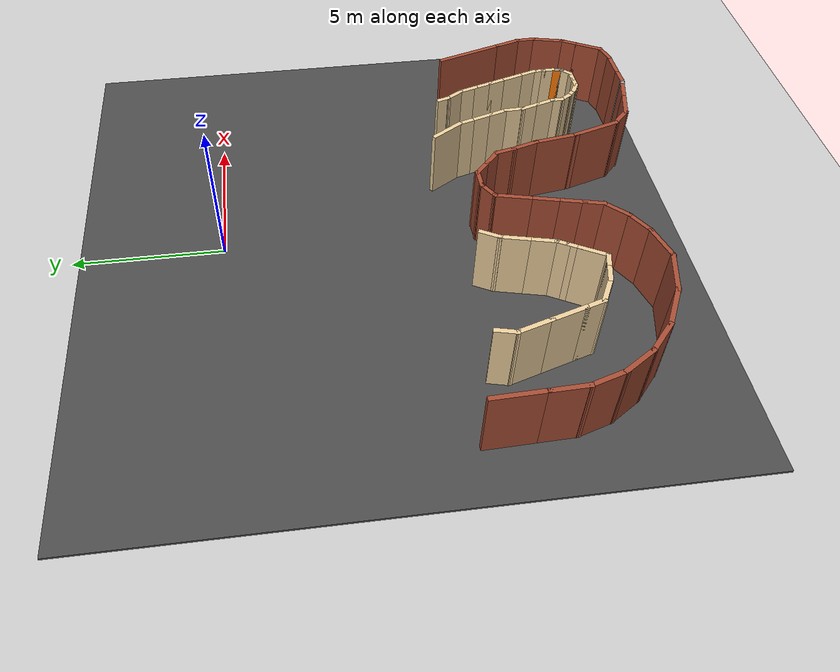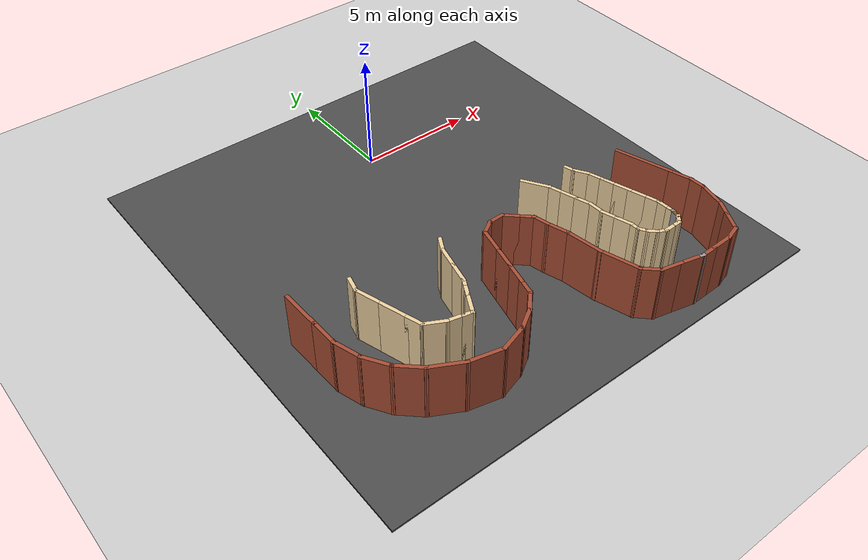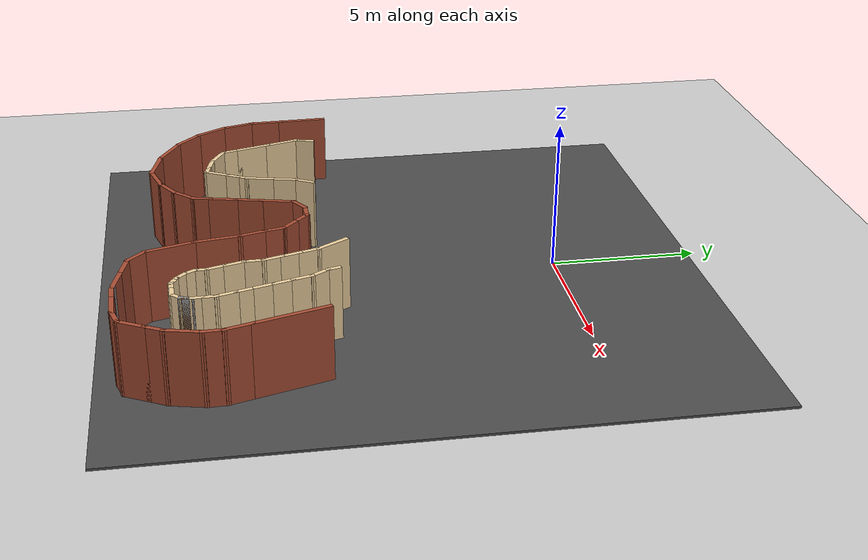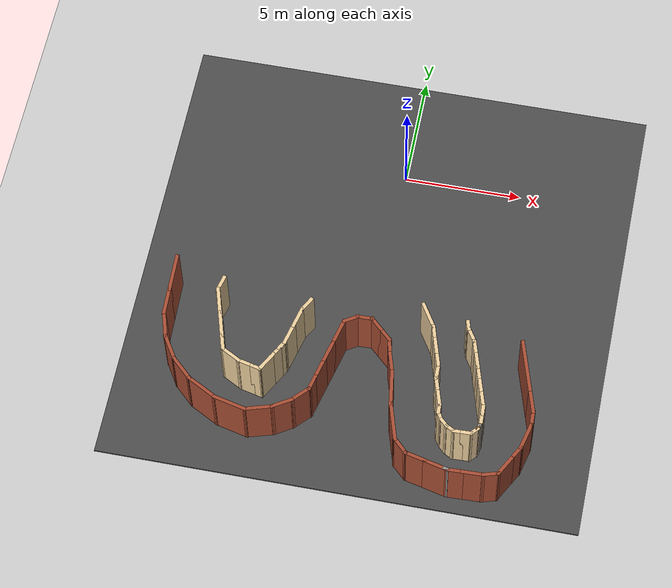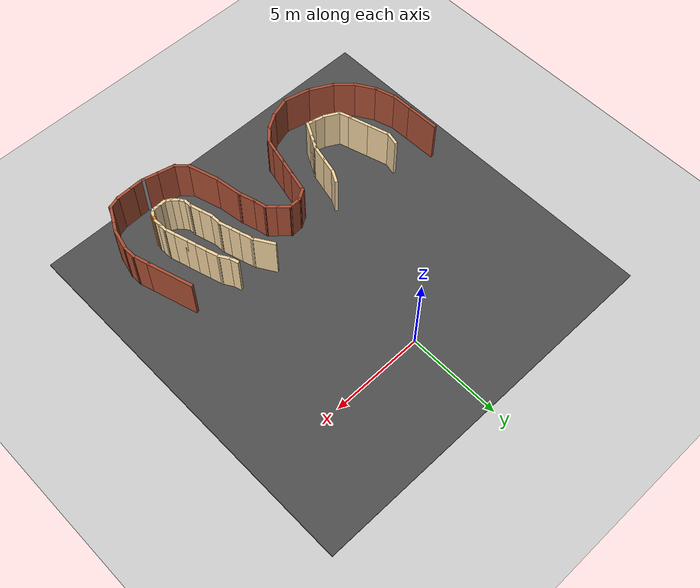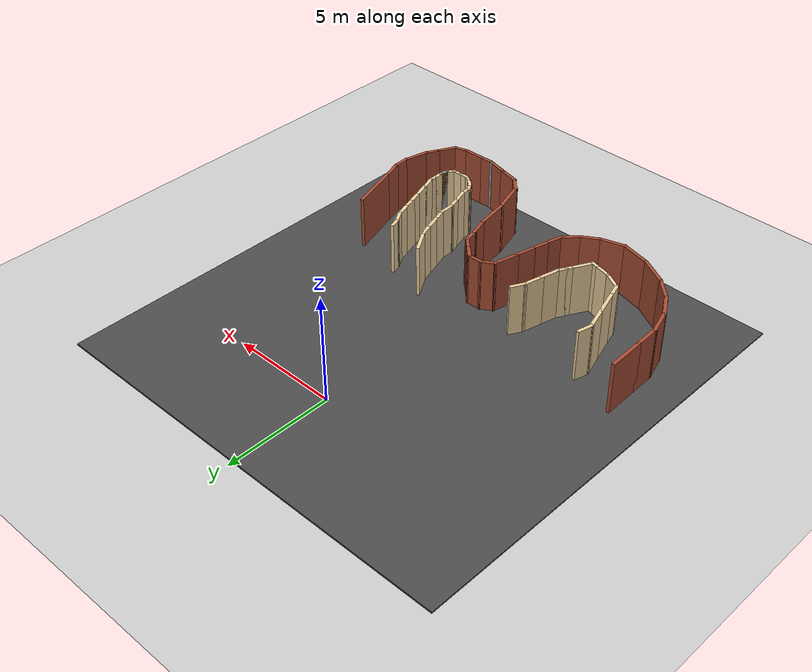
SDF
<sdf version="1.7">
 <world name="default">
  <model name="ground_plane">
   <static>1</static>
   <link name="link">
    <collision name="collision">
     <geometry><plane><normal>0 0 1</normal><size>100 100</size></plane></geometry>
     <surface><friction><ode><mu>100</mu><mu2>50</mu2></ode></friction></surface>
    </collision>
    <visual name="visual">
     <cast_shadows>0</cast_shadows>
     <geometry><plane><normal>0 0 1</normal><size>100 100</size></plane></geometry>
     <material>
      <script><uri>file://media/materials/scripts/gazebo.material</uri><name>Gazebo/Grey</name></script>
     </material>
    </visual>
   </link>
  </model>
  <model name="one">
   <pose>-0.558096 -6.76424 0 0 0 -1.54151</pose>
   <link name="Wall_379">
    <collision name="Wall_379_Collision">
     <geometry><box><size>2.5 0.15 2.5</size></box></geometry>
     <pose>0 0 1.25 0 -0 0</pose>
    </collision>
    <visual name="Wall_379_Visual">
     <pose>0 0 1.25 0 -0 0</pose>
     <geometry><box><size>2.5 0.15 2.5</size></box></geometry>
     <material>
      <script><uri>file://media/materials/scripts/gazebo.material</uri><name>Gazebo/Bricks</name></script>
      <ambient>1 1 1 1</ambient>
     </material>
     <meta><layer>0</layer></meta>
    </visual>
    <pose>2.87512 7.18331 0 0 -0 0.261799</pose>
   </link>
   <link name="Wall_380">
    <collision name="Wall_380_Collision">
     <geometry><box><size>1 0.15 2.5</size></box></geometry>
     <pose>0 0 1.25 0 -0 0</pose>
    </collision>
    <visual name="Wall_380_Visual">
     <pose>0 0 1.25 0 -0 0</pose>
     <geometry><box><size>1 0.15 2.5</size></box></geometry>
     <material>
      <script><uri>file://media/materials/scripts/gazebo.material</uri><name>Gazebo/Bricks</name></script>
      <ambient>1 1 1 1</ambient>
     </material>
     <meta><layer>0</layer></meta>
    </visual>
    <pose>4.42061 7.59742 0 0 -0 0.261799</pose>
   </link>
   <link name="Wall_381">
    <collision name="Wall_381_Collision">
     <geometry><box><size>0.75 0.15 2.5</size></box></geometry>
     <pose>0 0 1.25 0 -0 0</pose>
    </collision>
    <visual name="Wall_381_Visual">
     <pose>0 0 1.25 0 -0 0</pose>
     <geometry><box><size>0.75 0.15 2.5</size></box></geometry>
     <material>
      <script><uri>file://media/materials/scripts/gazebo.material</uri><name>Gazebo/Bricks</name></script>
      <ambient>1 1 1 1</ambient>
     </material>
     <meta><layer>0</layer></meta>
    </visual>
    <pose>5.13112 7.70742 0 0 -0 0</pose>
   </link>
   <link name="Wall_382">
    <collision name="Wall_382_Collision">
     <geometry><box><size>1.25 0.15 2.5</size></box></geometry>
     <pose>0 0 1.25 0 -0 0</pose>
    </collision>
    <visual name="Wall_382_Visual">
     <pose>0 0 1.25 0 -0 0</pose>
     <geometry><box><size>1.25 0.15 2.5</size></box></geometry>
     <material>
      <script><uri>file://media/materials/scripts/gazebo.material</uri><name>Gazebo/Bricks</name></script>
      <ambient>1 1 1 1</ambient>
     </material>
     <meta><layer>0</layer></meta>
    </visual>
    <pose>5.96238 7.56507 0 0 -0 -0.261799</pose>
   </link>
   <link name="Wall_383">
    <collision name="Wall_383_Collision">
     <geometry><box><size>0.75 0.15 2.5</size></box></geometry>
     <pose>0 0 1.25 0 -0 0</pose>
    </collision>
    <visual name="Wall_383_Visual">
     <pose>0 0 1.25 0 -0 0</pose>
     <geometry><box><size>0.75 0.15 2.5</size></box></geometry>
     <material>
      <script><uri>file://media/materials/scripts/gazebo.material</uri><name>Gazebo/Bricks</name></script>
      <ambient>1 1 1 1</ambient>
     </material>
     <meta><layer>0</layer></meta>
    </visual>
    <pose>6.75345 7.27272 0 0 -0 -0.523599</pose>
   </link>
   <link name="Wall_384">
    <collision name="Wall_384_Collision">
     <geometry><box><size>1 0.15 2.5</size></box></geometry>
     <pose>0 0 1.25 0 -0 0</pose>
    </collision>
    <visual name="Wall_384_Visual">
     <pose>0 0 1.25 0 -0 0</pose>
     <geometry><box><size>1 0.15 2.5</size></box></geometry>
     <material>
      <script><uri>file://media/materials/scripts/gazebo.material</uri><name>Gazebo/Bricks</name></script>
      <ambient>1 1 1 1</ambient>
     </material>
     <meta><layer>0</layer></meta>
    </visual>
    <pose>7.38132 6.91022 0 0 -0 -0.523599</pose>
   </link>
   <link name="Wall_385">
    <collision name="Wall_385_Collision">
     <geometry><box><size>0.75 0.15 2.5</size></box></geometry>
     <pose>0 0 1.25 0 -0 0</pose>
    </collision>
    <visual name="Wall_385_Visual">
     <pose>0 0 1.25 0 -0 0</pose>
     <geometry><box><size>0.75 0.15 2.5</size></box></geometry>
     <material>
      <script><uri>file://media/materials/scripts/gazebo.material</uri><name>Gazebo/Bricks</name></script>
      <ambient>1 1 1 1</ambient>
     </material>
     <meta><layer>0</layer></meta>
    </visual>
    <pose>7.82702 6.40794 0 0 -0 -1.309</pose>
   </link>
   <link name="Wall_386">
    <collision name="Wall_386_Collision">
     <geometry><box><size>1 0.15 2.5</size></box></geometry>
     <pose>0 0 1.25 0 -0 0</pose>
    </collision>
    <visual name="Wall_386_Visual">
     <pose>0 0 1.25 0 -0 0</pose>
     <geometry><box><size>1 0.15 2.5</size></box></geometry>
     <material>
      <script><uri>file://media/materials/scripts/gazebo.material</uri><name>Gazebo/Bricks</name></script>
      <ambient>1 1 1 1</ambient>
     </material>
     <meta><layer>0</layer></meta>
    </visual>
    <pose>7.90467 5.69316 0 0 -0 -1.5708</pose>
   </link>
   <link name="Wall_387">
    <collision name="Wall_387_Collision">
     <geometry><box><size>0.75 0.15 2.5</size></box></geometry>
     <pose>0 0 1.25 0 -0 0</pose>
    </collision>
    <visual name="Wall_387_Visual">
     <pose>0 0 1.25 0 -0 0</pose>
     <geometry><box><size>0.75 0.15 2.5</size></box></geometry>
     <material>
      <script><uri>file://media/materials/scripts/gazebo.material</uri><name>Gazebo/Bricks</name></script>
      <ambient>1 1 1 1</ambient>
     </material>
     <meta><layer>0</layer></meta>
    </visual>
    <pose>7.90467 4.96816 0 0 -0 -1.5708</pose>
   </link>
   <link name="Wall_388">
    <collision name="Wall_388_Collision">
     <geometry><box><size>0.25 0.15 2.5</size></box></geometry>
     <pose>0 0 1.25 0 -0 0</pose>
    </collision>
    <visual name="Wall_388_Visual">
     <pose>0 0 1.25 0 -0 0</pose>
     <geometry><box><size>0.25 0.15 2.5</size></box></geometry>
     <material>
      <script><uri>file://media/materials/scripts/gazebo.material</uri><name>Gazebo/Grey</name></script>
      <ambient>1 1 1 1</ambient>
     </material>
     <meta><layer>0</layer></meta>
    </visual>
    <pose>7.89173 4.61987 0 0 -0 -1.8326</pose>
   </link>
   <link name="Wall_389">
    <collision name="Wall_389_Collision">
     <geometry><box><size>1 0.15 2.5</size></box></geometry>
     <pose>0 0 1.25 0 -0 0</pose>
    </collision>
    <visual name="Wall_389_Visual">
     <pose>0 0 1.25 0 -0 0</pose>
     <geometry><box><size>1 0.15 2.5</size></box></geometry>
     <material>
      <script><uri>file://media/materials/scripts/gazebo.material</uri><name>Gazebo/Bricks</name></script>
      <ambient>1 1 1 1</ambient>
     </material>
     <meta><layer>0</layer></meta>
    </visual>
    <pose>7.76879 4.16105 0 0 -0 -1.8326</pose>
   </link>
   <link name="Wall_390">
    <collision name="Wall_390_Collision">
     <geometry><box><size>1 0.15 2.5</size></box></geometry>
     <pose>0 0 1.25 0 -0 0</pose>
    </collision>
    <visual name="Wall_390_Visual">
     <pose>0 0 1.25 0 -0 0</pose>
     <geometry><box><size>1 0.15 2.5</size></box></geometry>
     <material>
      <script><uri>file://media/materials/scripts/gazebo.material</uri><name>Gazebo/Bricks</name></script>
      <ambient>1 1 1 1</ambient>
     </material>
     <meta><layer>0</layer></meta>
    </visual>
    <pose>7.54879 3.34002 0 0 -0 -1.8326</pose>
   </link>
   <link name="Wall_391">
    <collision name="Wall_391_Collision">
     <geometry><box><size>0.889556 0.15 2.5</size></box></geometry>
     <pose>0 0 1.25 0 -0 0</pose>
    </collision>
    <visual name="Wall_391_Visual">
     <pose>0 0 1.25 0 -0 0</pose>
     <geometry><box><size>0.889556 0.15 2.5</size></box></geometry>
     <material>
      <script><uri>file://media/materials/scripts/gazebo.material</uri><name>Gazebo/Bricks</name></script>
      <ambient>1 1 1 1</ambient>
     </material>
     <meta><layer>0</layer></meta>
    </visual>
    <pose>7.17195 2.67351 0 0 -0 -2.37696</pose>
   </link>
   <link name="Wall_392">
    <collision name="Wall_392_Collision">
     <geometry><box><size>1.75 0.15 2.5</size></box></geometry>
     <pose>0 0 1.25 0 -0 0</pose>
    </collision>
    <visual name="Wall_392_Visual">
     <pose>0 0 1.25 0 -0 0</pose>
     <geometry><box><size>1.75 0.15 2.5</size></box></geometry>
     <material>
      <script><uri>file://media/materials/scripts/gazebo.material</uri><name>Gazebo/Bricks</name></script>
      <ambient>1 1 1 1</ambient>
     </material>
     <meta><layer>0</layer></meta>
    </visual>
    <pose>6.13237 2.21047 0 0 -0 -2.87979</pose>
   </link>
   <link name="Wall_393">
    <collision name="Wall_393_Collision">
     <geometry><box><size>1.62119 0.15 2.5</size></box></geometry>
     <pose>0 0 1.25 0 -0 0</pose>
    </collision>
    <visual name="Wall_393_Visual">
     <pose>0 0 1.25 0 -0 0</pose>
     <geometry><box><size>1.62119 0.15 2.5</size></box></geometry>
     <material>
      <script><uri>file://media/materials/scripts/gazebo.material</uri><name>Gazebo/Bricks</name></script>
      <ambient>1 1 1 1</ambient>
     </material>
     <meta><layer>0</layer></meta>
    </visual>
    <pose>4.66397 1.91645 0 0 -0 -3.0231</pose>
   </link>
   <link name="Wall_394">
    <collision name="Wall_394_Collision">
     <geometry><box><size>1 0.15 2.5</size></box></geometry>
     <pose>0 0 1.25 0 -0 0</pose>
    </collision>
    <visual name="Wall_394_Visual">
     <pose>0 0 1.25 0 -0 0</pose>
     <geometry><box><size>1 0.15 2.5</size></box></geometry>
     <material>
      <script><uri>file://media/materials/scripts/gazebo.material</uri><name>Gazebo/Bricks</name></script>
      <ambient>1 1 1 1</ambient>
     </material>
     <meta><layer>0</layer></meta>
    </visual>
    <pose>3.52302 1.7195 0 0 -0 -2.87979</pose>
   </link>
   <link name="Wall_414">
    <collision name="Wall_414_Collision">
     <geometry><box><size>1.75 0.15 2.5</size></box></geometry>
     <pose>0 0 1.25 0 -0 0</pose>
    </collision>
    <visual name="Wall_414_Visual">
     <pose>0 0 1.25 0 -0 0</pose>
     <geometry><box><size>1.75 0.15 2.5</size></box></geometry>
     <material>
      <script><uri>file://media/materials/scripts/gazebo.material</uri><name>Gazebo/Bricks</name></script>
      <ambient>1 1 1 1</ambient>
     </material>
     <meta><layer>0</layer></meta>
    </visual>
    <pose>0.829668 -7.84054 0 0 -0 0</pose>
   </link>
   <link name="Wall_415">
    <collision name="Wall_415_Collision">
     <geometry><box><size>1.25 0.15 2.5</size></box></geometry>
     <pose>0 0 1.25 0 -0 0</pose>
    </collision>
    <visual name="Wall_415_Visual">
     <pose>0 0 1.25 0 -0 0</pose>
     <geometry><box><size>1.25 0.15 2.5</size></box></geometry>
     <material>
      <script><uri>file://media/materials/scripts/gazebo.material</uri><name>Gazebo/Bricks</name></script>
      <ambient>1 1 1 1</ambient>
     </material>
     <meta><layer>0</layer></meta>
    </visual>
    <pose>2.17967 -7.84054 0 0 -0 0</pose>
   </link>
   <link name="Wall_416">
    <collision name="Wall_416_Collision">
     <geometry><box><size>1.25 0.15 2.5</size></box></geometry>
     <pose>0 0 1.25 0 -0 0</pose>
    </collision>
    <visual name="Wall_416_Visual">
     <pose>0 0 1.25 0 -0 0</pose>
     <geometry><box><size>1.25 0.15 2.5</size></box></geometry>
     <material>
      <script><uri>file://media/materials/scripts/gazebo.material</uri><name>Gazebo/Bricks</name></script>
      <ambient>1 1 1 1</ambient>
     </material>
     <meta><layer>0</layer></meta>
    </visual>
    <pose>3.26093 -7.69818 0 0 -0 0.261799</pose>
   </link>
   <link name="Wall_417">
    <collision name="Wall_417_Collision">
     <geometry><box><size>1.25 0.15 2.5</size></box></geometry>
     <pose>0 0 1.25 0 -0 0</pose>
    </collision>
    <visual name="Wall_417_Visual">
     <pose>0 0 1.25 0 -0 0</pose>
     <geometry><box><size>1.25 0.15 2.5</size></box></geometry>
     <material>
      <script><uri>file://media/materials/scripts/gazebo.material</uri><name>Gazebo/Bricks</name></script>
      <ambient>1 1 1 1</ambient>
     </material>
     <meta><layer>0</layer></meta>
    </visual>
    <pose>4.2685 -7.28083 0 0 -0 0.523599</pose>
   </link>
   <link name="Wall_418">
    <collision name="Wall_418_Collision">
     <geometry><box><size>1.25 0.15 2.5</size></box></geometry>
     <pose>0 0 1.25 0 -0 0</pose>
    </collision>
    <visual name="Wall_418_Visual">
     <pose>0 0 1.25 0 -0 0</pose>
     <geometry><box><size>1.25 0.15 2.5</size></box></geometry>
     <material>
      <script><uri>file://media/materials/scripts/gazebo.material</uri><name>Gazebo/Bricks</name></script>
      <ambient>1 1 1 1</ambient>
     </material>
     <meta><layer>0</layer></meta>
    </visual>
    <pose>5.13372 -6.61693 0 0 -0 0.785398</pose>
   </link>
   <link name="Wall_419">
    <collision name="Wall_419_Collision">
     <geometry><box><size>1.5 0.15 2.5</size></box></geometry>
     <pose>0 0 1.25 0 -0 0</pose>
    </collision>
    <visual name="Wall_419_Visual">
     <pose>0 0 1.25 0 -0 0</pose>
     <geometry><box><size>1.5 0.15 2.5</size></box></geometry>
     <material>
      <script><uri>file://media/materials/scripts/gazebo.material</uri><name>Gazebo/Bricks</name></script>
      <ambient>1 1 1 1</ambient>
     </material>
     <meta><layer>0</layer></meta>
    </visual>
    <pose>5.86013 -5.64345 0 0 -0 1.0472</pose>
   </link>
   <link name="Wall_420">
    <collision name="Wall_420_Collision">
     <geometry><box><size>1.5 0.15 2.5</size></box></geometry>
     <pose>0 0 1.25 0 -0 0</pose>
    </collision>
    <visual name="Wall_420_Visual">
     <pose>0 0 1.25 0 -0 0</pose>
     <geometry><box><size>1.5 0.15 2.5</size></box></geometry>
     <material>
      <script><uri>file://media/materials/scripts/gazebo.material</uri><name>Gazebo/Bricks</name></script>
      <ambient>1 1 1 1</ambient>
     </material>
     <meta><layer>0</layer></meta>
    </visual>
    <pose>6.37233 -4.40688 0 0 -0 1.309</pose>
   </link>
   <link name="Wall_421">
    <collision name="Wall_421_Collision">
     <geometry><box><size>1.25 0.15 2.5</size></box></geometry>
     <pose>0 0 1.25 0 -0 0</pose>
    </collision>
    <visual name="Wall_421_Visual">
     <pose>0 0 1.25 0 -0 0</pose>
     <geometry><box><size>1.25 0.15 2.5</size></box></geometry>
     <material>
      <script><uri>file://media/materials/scripts/gazebo.material</uri><name>Gazebo/Bricks</name></script>
      <ambient>1 1 1 1</ambient>
     </material>
     <meta><layer>0</layer></meta>
    </visual>
    <pose>6.40469 -3.22362 0 0 -0 1.8326</pose>
   </link>
   <link name="Wall_422">
    <collision name="Wall_422_Collision">
     <geometry><box><size>1 0.15 2.5</size></box></geometry>
     <pose>0 0 1.25 0 -0 0</pose>
    </collision>
    <visual name="Wall_422_Visual">
     <pose>0 0 1.25 0 -0 0</pose>
     <geometry><box><size>1 0.15 2.5</size></box></geometry>
     <material>
      <script><uri>file://media/materials/scripts/gazebo.material</uri><name>Gazebo/Bricks</name></script>
      <ambient>1 1 1 1</ambient>
     </material>
     <meta><layer>0</layer></meta>
    </visual>
    <pose>6.04984 -2.3243 0 0 -0 2.0944</pose>
   </link>
   <link name="Wall_423">
    <collision name="Wall_423_Collision">
     <geometry><box><size>1 0.15 2.5</size></box></geometry>
     <pose>0 0 1.25 0 -0 0</pose>
    </collision>
    <visual name="Wall_423_Visual">
     <pose>0 0 1.25 0 -0 0</pose>
     <geometry><box><size>1 0.15 2.5</size></box></geometry>
     <material>
      <script><uri>file://media/materials/scripts/gazebo.material</uri><name>Gazebo/Bricks</name></script>
      <ambient>1 1 1 1</ambient>
     </material>
     <meta><layer>0</layer></meta>
    </visual>
    <pose>5.53682 -1.65572 0 0 -0 2.35619</pose>
   </link>
   <link name="Wall_424">
    <collision name="Wall_424_Collision">
     <geometry><box><size>0.75 0.15 2.5</size></box></geometry>
     <pose>0 0 1.25 0 -0 0</pose>
    </collision>
    <visual name="Wall_424_Visual">
     <pose>0 0 1.25 0 -0 0</pose>
     <geometry><box><size>0.75 0.15 2.5</size></box></geometry>
     <material>
      <script><uri>file://media/materials/scripts/gazebo.material</uri><name>Gazebo/Bricks</name></script>
      <ambient>1 1 1 1</ambient>
     </material>
     <meta><layer>0</layer></meta>
    </visual>
    <pose>4.94652 -1.27756 0 0 -0 2.87979</pose>
   </link>
   <link name="Wall_425">
    <collision name="Wall_425_Collision">
     <geometry><box><size>1 0.15 2.5</size></box></geometry>
     <pose>0 0 1.25 0 -0 0</pose>
    </collision>
    <visual name="Wall_425_Visual">
     <pose>0 0 1.25 0 -0 0</pose>
     <geometry><box><size>1 0.15 2.5</size></box></geometry>
     <material>
      <script><uri>file://media/materials/scripts/gazebo.material</uri><name>Gazebo/Bricks</name></script>
      <ambient>1 1 1 1</ambient>
     </material>
     <meta><layer>0</layer></meta>
    </visual>
    <pose>4.24622 -1.08991 0 0 -0 2.87979</pose>
   </link>
   <link name="Wall_426">
    <collision name="Wall_426_Collision">
     <geometry><box><size>1 0.15 2.5</size></box></geometry>
     <pose>0 0 1.25 0 -0 0</pose>
    </collision>
    <visual name="Wall_426_Visual">
     <pose>0 0 1.25 0 -0 0</pose>
     <geometry><box><size>1 0.15 2.5</size></box></geometry>
     <material>
      <script><uri>file://media/materials/scripts/gazebo.material</uri><name>Gazebo/Bricks</name></script>
      <ambient>1 1 1 1</ambient>
     </material>
     <meta><layer>0</layer></meta>
    </visual>
    <pose>3.42518 -0.869916 0 0 -0 2.87979</pose>
   </link>
   <link name="Wall_427">
    <collision name="Wall_427_Collision">
     <geometry><box><size>1.25 0.15 2.5</size></box></geometry>
     <pose>0 0 1.25 0 -0 0</pose>
    </collision>
    <visual name="Wall_427_Visual">
     <pose>0 0 1.25 0 -0 0</pose>
     <geometry><box><size>1.25 0.15 2.5</size></box></geometry>
     <material>
      <script><uri>file://media/materials/scripts/gazebo.material</uri><name>Gazebo/Bricks</name></script>
      <ambient>1 1 1 1</ambient>
     </material>
     <meta><layer>0</layer></meta>
    </visual>
    <pose>2.48341 -0.617567 0 0 -0 2.87979</pose>
   </link>
   <link name="Wall_428">
    <collision name="Wall_428_Collision">
     <geometry><box><size>0.75 0.15 2.5</size></box></geometry>
     <pose>0 0 1.25 0 -0 0</pose>
    </collision>
    <visual name="Wall_428_Visual">
     <pose>0 0 1.25 0 -0 0</pose>
     <geometry><box><size>0.75 0.15 2.5</size></box></geometry>
     <material>
      <script><uri>file://media/materials/scripts/gazebo.material</uri><name>Gazebo/Bricks</name></script>
      <ambient>1 1 1 1</ambient>
     </material>
     <meta><layer>0</layer></meta>
    </visual>
    <pose>1.80215 -0.215409 0 0 -0 2.0944</pose>
   </link>
   <link name="Wall_429">
    <collision name="Wall_429_Collision">
     <geometry><box><size>0.75 0.15 2.5</size></box></geometry>
     <pose>0 0 1.25 0 -0 0</pose>
    </collision>
    <visual name="Wall_429_Visual">
     <pose>0 0 1.25 0 -0 0</pose>
     <geometry><box><size>0.75 0.15 2.5</size></box></geometry>
     <material>
      <script><uri>file://media/materials/scripts/gazebo.material</uri><name>Gazebo/Bricks</name></script>
      <ambient>1 1 1 1</ambient>
     </material>
     <meta><layer>0</layer></meta>
    </visual>
    <pose>1.65215 0.344399 0 0 -0 1.5708</pose>
   </link>
   <link name="Wall_430">
    <collision name="Wall_430_Collision">
     <geometry><box><size>0.75 0.15 2.5</size></box></geometry>
     <pose>0 0 1.25 0 -0 0</pose>
    </collision>
    <visual name="Wall_430_Visual">
     <pose>0 0 1.25 0 -0 0</pose>
     <geometry><box><size>0.75 0.15 2.5</size></box></geometry>
     <material>
      <script><uri>file://media/materials/scripts/gazebo.material</uri><name>Gazebo/Bricks</name></script>
      <ambient>1 1 1 1</ambient>
     </material>
     <meta><layer>0</layer></meta>
    </visual>
    <pose>1.86428 0.856531 0 0 -0 0.785398</pose>
   </link>
   <link name="Wall_431">
    <collision name="Wall_431_Collision">
     <geometry><box><size>0.75 0.15 2.5</size></box></geometry>
     <pose>0 0 1.25 0 -0 0</pose>
    </collision>
    <visual name="Wall_431_Visual">
     <pose>0 0 1.25 0 -0 0</pose>
     <geometry><box><size>0.75 0.15 2.5</size></box></geometry>
     <material>
      <script><uri>file://media/materials/scripts/gazebo.material</uri><name>Gazebo/Bricks</name></script>
      <ambient>1 1 1 1</ambient>
     </material>
     <meta><layer>0</layer></meta>
    </visual>
    <pose>2.28854 1.28079 0 0 -0 0.785398</pose>
   </link>
   <link name="Wall_432">
    <collision name="Wall_432_Collision">
     <geometry><box><size>0.772834 0.15 2.5</size></box></geometry>
     <pose>0 0 1.25 0 -0 0</pose>
    </collision>
    <visual name="Wall_432_Visual">
     <pose>0 0 1.25 0 -0 0</pose>
     <geometry><box><size>0.772834 0.15 2.5</size></box></geometry>
     <material>
      <script><uri>file://media/materials/scripts/gazebo.material</uri><name>Gazebo/Bricks</name></script>
      <ambient>1 1 1 1</ambient>
     </material>
     <meta><layer>0</layer></meta>
    </visual>
    <pose>2.80659 1.55121 0 0 -0 0.188278</pose>
   </link>
   <link name="Wall_460">
    <collision name="Wall_460_Collision">
     <geometry><box><size>0.5 0.15 2.5</size></box></geometry>
     <pose>0 0 1.25 0 -0 0</pose>
    </collision>
    <visual name="Wall_460_Visual">
     <pose>0 0 1.25 0 -0 0</pose>
     <geometry><box><size>0.5 0.15 2.5</size></box></geometry>
     <material>
      <script><uri>file://media/materials/scripts/gazebo.material</uri><name>Gazebo/Grey</name></script>
      <ambient>0.921569 0.807843 0.615686 1</ambient>
     </material>
     <meta><layer>0</layer></meta>
    </visual>
    <pose>1.32761 4.5781 0 0 -0 0.261799</pose>
   </link>
   <link name="Wall_461">
    <collision name="Wall_461_Collision">
     <geometry><box><size>0.75 0.15 2.5</size></box></geometry>
     <pose>0 0 1.25 0 -0 0</pose>
    </collision>
    <visual name="Wall_461_Visual">
     <pose>0 0 1.25 0 -0 0</pose>
     <geometry><box><size>0.75 0.15 2.5</size></box></geometry>
     <material>
      <script><uri>file://media/materials/scripts/gazebo.material</uri><name>Gazebo/Grey</name></script>
      <ambient>0.921569 0.807843 0.615686 1</ambient>
     </material>
     <meta><layer>0</layer></meta>
    </visual>
    <pose>1.75646 4.77339 0 0 -0 0.523599</pose>
   </link>
   <link name="Wall_462">
    <collision name="Wall_462_Collision">
     <geometry><box><size>0.75 0.15 2.5</size></box></geometry>
     <pose>0 0 1.25 0 -0 0</pose>
    </collision>
    <visual name="Wall_462_Visual">
     <pose>0 0 1.25 0 -0 0</pose>
     <geometry><box><size>0.75 0.15 2.5</size></box></geometry>
     <material>
      <script><uri>file://media/materials/scripts/gazebo.material</uri><name>Gazebo/Grey</name></script>
      <ambient>0.921569 0.807843 0.615686 1</ambient>
     </material>
     <meta><layer>0</layer></meta>
    </visual>
    <pose>2.30604 5.00104 0 0 -0 0.261799</pose>
   </link>
   <link name="Wall_463">
    <collision name="Wall_463_Collision">
     <geometry><box><size>0.75 0.15 2.5</size></box></geometry>
     <pose>0 0 1.25 0 -0 0</pose>
    </collision>
    <visual name="Wall_463_Visual">
     <pose>0 0 1.25 0 -0 0</pose>
     <geometry><box><size>0.75 0.15 2.5</size></box></geometry>
     <material>
      <script><uri>file://media/materials/scripts/gazebo.material</uri><name>Gazebo/Grey</name></script>
      <ambient>0.921569 0.807843 0.615686 1</ambient>
     </material>
     <meta><layer>0</layer></meta>
    </visual>
    <pose>2.8856 5.15633 0 0 -0 0.261799</pose>
   </link>
   <link name="Wall_464">
    <collision name="Wall_464_Collision">
     <geometry><box><size>0.75 0.15 2.5</size></box></geometry>
     <pose>0 0 1.25 0 -0 0</pose>
    </collision>
    <visual name="Wall_464_Visual">
     <pose>0 0 1.25 0 -0 0</pose>
     <geometry><box><size>0.75 0.15 2.5</size></box></geometry>
     <material>
      <script><uri>file://media/materials/scripts/gazebo.material</uri><name>Gazebo/Grey</name></script>
      <ambient>0.921569 0.807843 0.615686 1</ambient>
     </material>
     <meta><layer>0</layer></meta>
    </visual>
    <pose>3.46515 5.31162 0 0 -0 0.261799</pose>
   </link>
   <link name="Wall_465">
    <collision name="Wall_465_Collision">
     <geometry><box><size>0.75 0.15 2.5</size></box></geometry>
     <pose>0 0 1.25 0 -0 0</pose>
    </collision>
    <visual name="Wall_465_Visual">
     <pose>0 0 1.25 0 -0 0</pose>
     <geometry><box><size>0.75 0.15 2.5</size></box></geometry>
     <material>
      <script><uri>file://media/materials/scripts/gazebo.material</uri><name>Gazebo/Grey</name></script>
      <ambient>0.921569 0.807843 0.615686 1</ambient>
     </material>
     <meta><layer>0</layer></meta>
    </visual>
    <pose>4.04471 5.46691 0 0 -0 0.261799</pose>
   </link>
   <link name="Wall_466">
    <collision name="Wall_466_Collision">
     <geometry><box><size>0.75 0.15 2.5</size></box></geometry>
     <pose>0 0 1.25 0 -0 0</pose>
    </collision>
    <visual name="Wall_466_Visual">
     <pose>0 0 1.25 0 -0 0</pose>
     <geometry><box><size>0.75 0.15 2.5</size></box></geometry>
     <material>
      <script><uri>file://media/materials/scripts/gazebo.material</uri><name>Gazebo/Grey</name></script>
      <ambient>0.921569 0.807843 0.615686 1</ambient>
     </material>
     <meta><layer>0</layer></meta>
    </visual>
    <pose>4.62426 5.6222 0 0 -0 0.261799</pose>
   </link>
   <link name="Wall_467">
    <collision name="Wall_467_Collision">
     <geometry><box><size>0.5 0.15 2.5</size></box></geometry>
     <pose>0 0 1.25 0 -0 0</pose>
    </collision>
    <visual name="Wall_467_Visual">
     <pose>0 0 1.25 0 -0 0</pose>
     <geometry><box><size>0.5 0.15 2.5</size></box></geometry>
     <material>
      <script><uri>file://media/materials/scripts/gazebo.material</uri><name>Gazebo/Grey</name></script>
      <ambient>0.921569 0.807843 0.615686 1</ambient>
     </material>
     <meta><layer>0</layer></meta>
    </visual>
    <pose>5.08904 5.69985 0 0 -0 0</pose>
   </link>
   <link name="Wall_468">
    <collision name="Wall_468_Collision">
     <geometry><box><size>0.5 0.15 2.5</size></box></geometry>
     <pose>0 0 1.25 0 -0 0</pose>
    </collision>
    <visual name="Wall_468_Visual">
     <pose>0 0 1.25 0 -0 0</pose>
     <geometry><box><size>0.5 0.15 2.5</size></box></geometry>
     <material>
      <script><uri>file://media/materials/scripts/gazebo.material</uri><name>Gazebo/Grey</name></script>
      <ambient>0.921569 0.807843 0.615686 1</ambient>
     </material>
     <meta><layer>0</layer></meta>
    </visual>
    <pose>5.43904 5.69985 0 0 -0 0</pose>
   </link>
   <link name="Wall_471">
    <collision name="Wall_471_Collision">
     <geometry><box><size>0.478571 0.15 2.5</size></box></geometry>
     <pose>0 0 1.25 0 -0 0</pose>
    </collision>
    <visual name="Wall_471_Visual">
     <pose>0 0 1.25 0 -0 0</pose>
     <geometry><box><size>0.478571 0.15 2.5</size></box></geometry>
     <material>
      <script><uri>file://media/materials/scripts/gazebo.material</uri><name>Gazebo/Grey</name></script>
      <ambient>1 1 1 1</ambient>
     </material>
     <meta><layer>0</layer></meta>
    </visual>
    <pose>5.77362 5.66079 0 0 -0 2.90155</pose>
   </link>
   <link name="Wall_472">
    <collision name="Wall_472_Collision">
     <geometry><box><size>0.478571 0.15 2.5</size></box></geometry>
     <pose>0 0 1.25 0 -0 0</pose>
    </collision>
    <visual name="Wall_472_Visual">
     <pose>0 0 1.25 0 -0 0</pose>
     <geometry><box><size>0.478571 0.15 2.5</size></box></geometry>
     <material>
      <script><uri>file://media/materials/scripts/gazebo.material</uri><name>Gazebo/Grey</name></script>
      <ambient>0.996078 0.47451 0.0196078 1</ambient>
     </material>
     <meta><layer>0</layer></meta>
    </visual>
    <pose>5.77362 5.66079 0 0 -0 -0.24004</pose>
   </link>
   <link name="Wall_473">
    <collision name="Wall_473_Collision">
     <geometry><box><size>0.5 0.15 2.5</size></box></geometry>
     <pose>0 0 1.25 0 -0 0</pose>
    </collision>
    <visual name="Wall_473_Visual">
     <pose>0 0 1.25 0 -0 0</pose>
     <geometry><box><size>0.5 0.15 2.5</size></box></geometry>
     <material>
      <script><uri>file://media/materials/scripts/gazebo.material</uri><name>Gazebo/Grey</name></script>
      <ambient>0.921569 0.807843 0.615686 1</ambient>
     </material>
     <meta><layer>0</layer></meta>
    </visual>
    <pose>6.05694 5.49799 0 0 -0 -0.785398</pose>
   </link>
   <link name="Wall_474">
    <collision name="Wall_474_Collision">
     <geometry><box><size>0.5 0.15 2.5</size></box></geometry>
     <pose>0 0 1.25 0 -0 0</pose>
    </collision>
    <visual name="Wall_474_Visual">
     <pose>0 0 1.25 0 -0 0</pose>
     <geometry><box><size>0.5 0.15 2.5</size></box></geometry>
     <material>
      <script><uri>file://media/materials/scripts/gazebo.material</uri><name>Gazebo/Grey</name></script>
      <ambient>0.921569 0.807843 0.615686 1</ambient>
     </material>
     <meta><layer>0</layer></meta>
    </visual>
    <pose>6.18068 5.19925 0 0 -0 -1.5708</pose>
   </link>
   <link name="Wall_475">
    <collision name="Wall_475_Collision">
     <geometry><box><size>0.5 0.15 2.5</size></box></geometry>
     <pose>0 0 1.25 0 -0 0</pose>
    </collision>
    <visual name="Wall_475_Visual">
     <pose>0 0 1.25 0 -0 0</pose>
     <geometry><box><size>0.5 0.15 2.5</size></box></geometry>
     <material>
      <script><uri>file://media/materials/scripts/gazebo.material</uri><name>Gazebo/Grey</name></script>
      <ambient>0.921569 0.807843 0.615686 1</ambient>
     </material>
     <meta><layer>0</layer></meta>
    </visual>
    <pose>6.18068 4.84925 0 0 -0 -1.5708</pose>
   </link>
   <link name="Wall_476">
    <collision name="Wall_476_Collision">
     <geometry><box><size>0.5 0.15 2.5</size></box></geometry>
     <pose>0 0 1.25 0 -0 0</pose>
    </collision>
    <visual name="Wall_476_Visual">
     <pose>0 0 1.25 0 -0 0</pose>
     <geometry><box><size>0.5 0.15 2.5</size></box></geometry>
     <material>
      <script><uri>file://media/materials/scripts/gazebo.material</uri><name>Gazebo/Grey</name></script>
      <ambient>0.921569 0.807843 0.615686 1</ambient>
     </material>
     <meta><layer>0</layer></meta>
    </visual>
    <pose>6.09318 4.52269 0 0 -0 -2.0944</pose>
   </link>
   <link name="Wall_477">
    <collision name="Wall_477_Collision">
     <geometry><box><size>0.5 0.15 2.5</size></box></geometry>
     <pose>0 0 1.25 0 -0 0</pose>
    </collision>
    <visual name="Wall_477_Visual">
     <pose>0 0 1.25 0 -0 0</pose>
     <geometry><box><size>0.5 0.15 2.5</size></box></geometry>
     <material>
      <script><uri>file://media/materials/scripts/gazebo.material</uri><name>Gazebo/Grey</name></script>
      <ambient>0.921569 0.807843 0.615686 1</ambient>
     </material>
     <meta><layer>0</layer></meta>
    </visual>
    <pose>5.88194 4.24739 0 0 -0 -2.35619</pose>
   </link>
   <link name="Wall_478">
    <collision name="Wall_478_Collision">
     <geometry><box><size>0.5 0.15 2.5</size></box></geometry>
     <pose>0 0 1.25 0 -0 0</pose>
    </collision>
    <visual name="Wall_478_Visual">
     <pose>0 0 1.25 0 -0 0</pose>
     <geometry><box><size>0.5 0.15 2.5</size></box></geometry>
     <material>
      <script><uri>file://media/materials/scripts/gazebo.material</uri><name>Gazebo/Grey</name></script>
      <ambient>0.921569 0.807843 0.615686 1</ambient>
     </material>
     <meta><layer>0</layer></meta>
    </visual>
    <pose>5.60664 4.03615 0 0 -0 -2.61799</pose>
   </link>
   <link name="Wall_479">
    <collision name="Wall_479_Collision">
     <geometry><box><size>0.5 0.15 2.5</size></box></geometry>
     <pose>0 0 1.25 0 -0 0</pose>
    </collision>
    <visual name="Wall_479_Visual">
     <pose>0 0 1.25 0 -0 0</pose>
     <geometry><box><size>0.5 0.15 2.5</size></box></geometry>
     <material>
      <script><uri>file://media/materials/scripts/gazebo.material</uri><name>Gazebo/Grey</name></script>
      <ambient>0.921569 0.807843 0.615686 1</ambient>
     </material>
     <meta><layer>0</layer></meta>
    </visual>
    <pose>5.28008 3.94865 0 0 -0 3.14159</pose>
   </link>
   <link name="Wall_480">
    <collision name="Wall_480_Collision">
     <geometry><box><size>0.75 0.15 2.5</size></box></geometry>
     <pose>0 0 1.25 0 -0 0</pose>
    </collision>
    <visual name="Wall_480_Visual">
     <pose>0 0 1.25 0 -0 0</pose>
     <geometry><box><size>0.75 0.15 2.5</size></box></geometry>
     <material>
      <script><uri>file://media/materials/scripts/gazebo.material</uri><name>Gazebo/Grey</name></script>
      <ambient>0.921569 0.807843 0.615686 1</ambient>
     </material>
     <meta><layer>0</layer></meta>
    </visual>
    <pose>4.81531 3.871 0 0 -0 -2.87979</pose>
   </link>
   <link name="Wall_481">
    <collision name="Wall_481_Collision">
     <geometry><box><size>0.75 0.15 2.5</size></box></geometry>
     <pose>0 0 1.25 0 -0 0</pose>
    </collision>
    <visual name="Wall_481_Visual">
     <pose>0 0 1.25 0 -0 0</pose>
     <geometry><box><size>0.75 0.15 2.5</size></box></geometry>
     <material>
      <script><uri>file://media/materials/scripts/gazebo.material</uri><name>Gazebo/Grey</name></script>
      <ambient>0.921569 0.807843 0.615686 1</ambient>
     </material>
     <meta><layer>0</layer></meta>
    </visual>
    <pose>4.23575 3.71571 0 0 -0 -2.87979</pose>
   </link>
   <link name="Wall_482">
    <collision name="Wall_482_Collision">
     <geometry><box><size>0.75 0.15 2.5</size></box></geometry>
     <pose>0 0 1.25 0 -0 0</pose>
    </collision>
    <visual name="Wall_482_Visual">
     <pose>0 0 1.25 0 -0 0</pose>
     <geometry><box><size>0.75 0.15 2.5</size></box></geometry>
     <material>
      <script><uri>file://media/materials/scripts/gazebo.material</uri><name>Gazebo/Grey</name></script>
      <ambient>0.921569 0.807843 0.615686 1</ambient>
     </material>
     <meta><layer>0</layer></meta>
    </visual>
    <pose>3.64597 3.63807 0 0 -0 3.14159</pose>
   </link>
   <link name="Wall_483">
    <collision name="Wall_483_Collision">
     <geometry><box><size>0.75 0.15 2.5</size></box></geometry>
     <pose>0 0 1.25 0 -0 0</pose>
    </collision>
    <visual name="Wall_483_Visual">
     <pose>0 0 1.25 0 -0 0</pose>
     <geometry><box><size>0.75 0.15 2.5</size></box></geometry>
     <material>
      <script><uri>file://media/materials/scripts/gazebo.material</uri><name>Gazebo/Grey</name></script>
      <ambient>0.921569 0.807843 0.615686 1</ambient>
     </material>
     <meta><layer>0</layer></meta>
    </visual>
    <pose>3.05619 3.56042 0 0 -0 -2.87979</pose>
   </link>
   <link name="Wall_484">
    <collision name="Wall_484_Collision">
     <geometry><box><size>0.75 0.15 2.5</size></box></geometry>
     <pose>0 0 1.25 0 -0 0</pose>
    </collision>
    <visual name="Wall_484_Visual">
     <pose>0 0 1.25 0 -0 0</pose>
     <geometry><box><size>0.75 0.15 2.5</size></box></geometry>
     <material>
      <script><uri>file://media/materials/scripts/gazebo.material</uri><name>Gazebo/Grey</name></script>
      <ambient>0.921569 0.807843 0.615686 1</ambient>
     </material>
     <meta><layer>0</layer></meta>
    </visual>
    <pose>2.47664 3.40513 0 0 -0 -2.87979</pose>
   </link>
   <link name="Wall_485">
    <collision name="Wall_485_Collision">
     <geometry><box><size>0.75 0.15 2.5</size></box></geometry>
     <pose>0 0 1.25 0 -0 0</pose>
    </collision>
    <visual name="Wall_485_Visual">
     <pose>0 0 1.25 0 -0 0</pose>
     <geometry><box><size>0.75 0.15 2.5</size></box></geometry>
     <material>
      <script><uri>file://media/materials/scripts/gazebo.material</uri><name>Gazebo/Grey</name></script>
      <ambient>0.921569 0.807843 0.615686 1</ambient>
     </material>
     <meta><layer>0</layer></meta>
    </visual>
    <pose>1.89708 3.24984 0 0 -0 -2.87979</pose>
   </link>
   <link name="Wall_486">
    <collision name="Wall_486_Collision">
     <geometry><box><size>1.25 0.15 2.5</size></box></geometry>
     <pose>0 0 1.25 0 -0 0</pose>
    </collision>
    <visual name="Wall_486_Visual">
     <pose>0 0 1.25 0 -0 0</pose>
     <geometry><box><size>1.25 0.15 2.5</size></box></geometry>
     <material>
      <script><uri>file://media/materials/scripts/gazebo.material</uri><name>Gazebo/Grey</name></script>
      <ambient>0.921569 0.807843 0.615686 1</ambient>
     </material>
     <meta><layer>0</layer></meta>
    </visual>
    <pose>1.13099 2.89719 0 0 -0 -2.61799</pose>
   </link>
   <link name="Wall_496">
    <collision name="Wall_496_Collision">
     <geometry><box><size>0.75 0.15 2.5</size></box></geometry>
     <pose>0 0 1.25 0 -0 0</pose>
    </collision>
    <visual name="Wall_496_Visual">
     <pose>0 0 1.25 0 -0 0</pose>
     <geometry><box><size>0.75 0.15 2.5</size></box></geometry>
     <material>
      <script><uri>file://media/materials/scripts/gazebo.material</uri><name>Gazebo/Grey</name></script>
      <ambient>0.921569 0.807843 0.615686 1</ambient>
     </material>
     <meta><layer>0</layer></meta>
    </visual>
    <pose>1.4137 -2.11825 0 0 -0 -0.523599</pose>
   </link>
   <link name="Wall_497">
    <collision name="Wall_497_Collision">
     <geometry><box><size>1 0.15 2.5</size></box></geometry>
     <pose>0 0 1.25 0 -0 0</pose>
    </collision>
    <visual name="Wall_497_Visual">
     <pose>0 0 1.25 0 -0 0</pose>
     <geometry><box><size>1 0.15 2.5</size></box></geometry>
     <material>
      <script><uri>file://media/materials/scripts/gazebo.material</uri><name>Gazebo/Grey</name></script>
      <ambient>0.921569 0.807843 0.615686 1</ambient>
     </material>
     <meta><layer>0</layer></meta>
    </visual>
    <pose>2.08403 -2.37825 0 0 -0 -0.261799</pose>
   </link>
   <link name="Wall_498">
    <collision name="Wall_498_Collision">
     <geometry><box><size>1 0.15 2.5</size></box></geometry>
     <pose>0 0 1.25 0 -0 0</pose>
    </collision>
    <visual name="Wall_498_Visual">
     <pose>0 0 1.25 0 -0 0</pose>
     <geometry><box><size>1 0.15 2.5</size></box></geometry>
     <material>
      <script><uri>file://media/materials/scripts/gazebo.material</uri><name>Gazebo/Grey</name></script>
      <ambient>0.921569 0.807843 0.615686 1</ambient>
     </material>
     <meta><layer>0</layer></meta>
    </visual>
    <pose>2.90507 -2.59824 0 0 -0 -0.261799</pose>
   </link>
   <link name="Wall_499">
    <collision name="Wall_499_Collision">
     <geometry><box><size>0.5 0.15 2.5</size></box></geometry>
     <pose>0 0 1.25 0 -0 0</pose>
    </collision>
    <visual name="Wall_499_Visual">
     <pose>0 0 1.25 0 -0 0</pose>
     <geometry><box><size>0.5 0.15 2.5</size></box></geometry>
     <material>
      <script><uri>file://media/materials/scripts/gazebo.material</uri><name>Gazebo/Grey</name></script>
      <ambient>0.921569 0.807843 0.615686 1</ambient>
     </material>
     <meta><layer>0</layer></meta>
    </visual>
    <pose>3.46714 -2.79574 0 0 -0 -0.523599</pose>
   </link>
   <link name="Wall_500">
    <collision name="Wall_500_Collision">
     <geometry><box><size>0.5 0.15 2.5</size></box></geometry>
     <pose>0 0 1.25 0 -0 0</pose>
    </collision>
    <visual name="Wall_500_Visual">
     <pose>0 0 1.25 0 -0 0</pose>
     <geometry><box><size>0.5 0.15 2.5</size></box></geometry>
     <material>
      <script><uri>file://media/materials/scripts/gazebo.material</uri><name>Gazebo/Grey</name></script>
      <ambient>0.921569 0.807843 0.615686 1</ambient>
     </material>
     <meta><layer>0</layer></meta>
    </visual>
    <pose>3.77025 -2.97074 0 0 -0 -0.523599</pose>
   </link>
   <link name="Wall_501">
    <collision name="Wall_501_Collision">
     <geometry><box><size>1 0.15 2.5</size></box></geometry>
     <pose>0 0 1.25 0 -0 0</pose>
    </collision>
    <visual name="Wall_501_Visual">
     <pose>0 0 1.25 0 -0 0</pose>
     <geometry><box><size>1 0.15 2.5</size></box></geometry>
     <material>
      <script><uri>file://media/materials/scripts/gazebo.material</uri><name>Gazebo/Grey</name></script>
      <ambient>0.921569 0.807843 0.615686 1</ambient>
     </material>
     <meta><layer>0</layer></meta>
    </visual>
    <pose>4.28986 -3.27074 0 0 -0 -0.523599</pose>
   </link>
   <link name="Wall_502">
    <collision name="Wall_502_Collision">
     <geometry><box><size>0.5 0.15 2.5</size></box></geometry>
     <pose>0 0 1.25 0 -0 0</pose>
    </collision>
    <visual name="Wall_502_Visual">
     <pose>0 0 1.25 0 -0 0</pose>
     <geometry><box><size>0.5 0.15 2.5</size></box></geometry>
     <material>
      <script><uri>file://media/materials/scripts/gazebo.material</uri><name>Gazebo/Grey</name></script>
      <ambient>0.921569 0.807843 0.615686 1</ambient>
     </material>
     <meta><layer>0</layer></meta>
    </visual>
    <pose>4.61263 -3.65228 0 0 -0 -1.8326</pose>
   </link>
   <link name="Wall_503">
    <collision name="Wall_503_Collision">
     <geometry><box><size>0.75 0.15 2.5</size></box></geometry>
     <pose>0 0 1.25 0 -0 0</pose>
    </collision>
    <visual name="Wall_503_Visual">
     <pose>0 0 1.25 0 -0 0</pose>
     <geometry><box><size>0.75 0.15 2.5</size></box></geometry>
     <material>
      <script><uri>file://media/materials/scripts/gazebo.material</uri><name>Gazebo/Grey</name></script>
      <ambient>0.921569 0.807843 0.615686 1</ambient>
     </material>
     <meta><layer>0</layer></meta>
    </visual>
    <pose>4.48969 -4.11109 0 0 -0 -1.8326</pose>
   </link>
   <link name="Wall_504">
    <collision name="Wall_504_Collision">
     <geometry><box><size>1 0.15 2.5</size></box></geometry>
     <pose>0 0 1.25 0 -0 0</pose>
    </collision>
    <visual name="Wall_504_Visual">
     <pose>0 0 1.25 0 -0 0</pose>
     <geometry><box><size>1 0.15 2.5</size></box></geometry>
     <material>
      <script><uri>file://media/materials/scripts/gazebo.material</uri><name>Gazebo/Grey</name></script>
      <ambient>0.921569 0.807843 0.615686 1</ambient>
     </material>
     <meta><layer>0</layer></meta>
    </visual>
    <pose>4.19954 -4.76893 0 0 -0 -2.0944</pose>
   </link>
   <link name="Wall_505">
    <collision name="Wall_505_Collision">
     <geometry><box><size>0.75 0.15 2.5</size></box></geometry>
     <pose>0 0 1.25 0 -0 0</pose>
    </collision>
    <visual name="Wall_505_Visual">
     <pose>0 0 1.25 0 -0 0</pose>
     <geometry><box><size>0.75 0.15 2.5</size></box></geometry>
     <material>
      <script><uri>file://media/materials/scripts/gazebo.material</uri><name>Gazebo/Grey</name></script>
      <ambient>0.921569 0.807843 0.615686 1</ambient>
     </material>
     <meta><layer>0</layer></meta>
    </visual>
    <pose>3.69727 -5.21464 0 0 -0 -2.87979</pose>
   </link>
   <link name="Wall_506">
    <collision name="Wall_506_Collision">
     <geometry><box><size>1.25 0.15 2.5</size></box></geometry>
     <pose>0 0 1.25 0 -0 0</pose>
    </collision>
    <visual name="Wall_506_Visual">
     <pose>0 0 1.25 0 -0 0</pose>
     <geometry><box><size>1.25 0.15 2.5</size></box></geometry>
     <material>
      <script><uri>file://media/materials/scripts/gazebo.material</uri><name>Gazebo/Grey</name></script>
      <ambient>0.921569 0.807843 0.615686 1</ambient>
     </material>
     <meta><layer>0</layer></meta>
    </visual>
    <pose>2.87623 -5.43464 0 0 -0 -2.87979</pose>
   </link>
   <link name="Wall_507">
    <collision name="Wall_507_Collision">
     <geometry><box><size>1.25 0.15 2.5</size></box></geometry>
     <pose>0 0 1.25 0 -0 0</pose>
    </collision>
    <visual name="Wall_507_Visual">
     <pose>0 0 1.25 0 -0 0</pose>
     <geometry><box><size>1.25 0.15 2.5</size></box></geometry>
     <material>
      <script><uri>file://media/materials/scripts/gazebo.material</uri><name>Gazebo/Grey</name></script>
      <ambient>0.921569 0.807843 0.615686 1</ambient>
     </material>
     <meta><layer>0</layer></meta>
    </visual>
    <pose>1.81371 -5.71934 0 0 -0 -2.87979</pose>
   </link>
   <link name="Wall_508">
    <collision name="Wall_508_Collision">
     <geometry><box><size>0.75 0.15 2.5</size></box></geometry>
     <pose>0 0 1.25 0 -0 0</pose>
    </collision>
    <visual name="Wall_508_Visual">
     <pose>0 0 1.25 0 -0 0</pose>
     <geometry><box><size>0.75 0.15 2.5</size></box></geometry>
     <material>
      <script><uri>file://media/materials/scripts/gazebo.material</uri><name>Gazebo/Grey</name></script>
      <ambient>0.921569 0.807843 0.615686 1</ambient>
     </material>
     <meta><layer>0</layer></meta>
    </visual>
    <pose>0.992675 -5.78404 0 0 -0 2.87979</pose>
   </link>
   <static>1</static>
  </model>
  <model name="asphalt_plane">
   <static>1</static>
   <link name="link">
    <collision name="collision"><geometry><box><size>20 20 0.1</size></box></geometry></collision>
    <visual name="visual">
     <cast_shadows>0</cast_shadows>
     <geometry><box><size>20 20 0.1</size></box></geometry>
     <material>
      <script>
       <uri>model://asphalt_plane/materials/scripts</uri>
       <uri>model://asphalt_plane/materials/textures</uri>
       <name>vrc/asphalt</name>
      </script>
     </material>
    </visual>
   </link>
   <pose>-0.120402 -5.25218 0 0 -0 0</pose>
  </model>
 </world>
</sdf>
